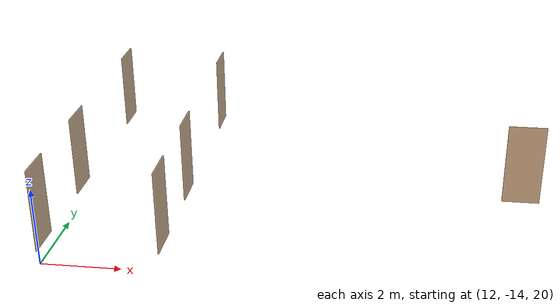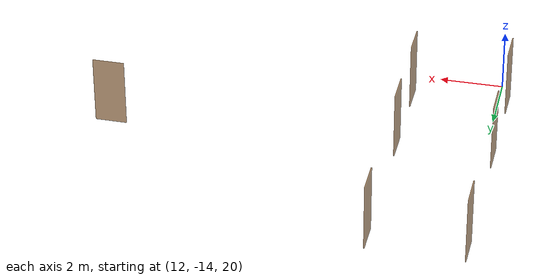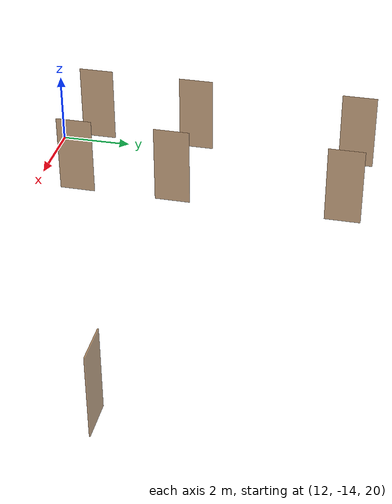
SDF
<sdf version="1.7">
 <world name="sim_world">
  <model name="room1_door">
   <pose>14.7 -5.25 20.0 0 0 -1.5707963267948966</pose>
   <plugin name="door" filename="libdoor.so">
    <v_max_door>0.5</v_max_door>
    <a_max_door>0.3</a_max_door>
    <a_nom_door>0.15</a_nom_door>
    <dx_min_door>0.01</dx_min_door>
    <f_max_door>500.0</f_max_door>
    <door name="room1_door" type="SwingDoor" left_joint_name="left_joint" right_joint_name="empty_joint"/>
   </plugin>
   <link name="left">
    <pose>0 0 1.11 0 0 0</pose>
    <visual name="left_visual">
     <geometry><box><size>0.99 0.03 2.2</size></box></geometry>
     <material>
      <ambient>0.5 0.25 0 0.6</ambient>
      <diffuse>0.5 0.25 0 0.6</diffuse>
      <pbr><metal><metalness>0.0</metalness></metal></pbr>
     </material>
    </visual>
    <collision name="left_collision">
     <geometry><box><size>0.99 0.03 2.2</size></box></geometry>
     <surface><contact><collide_bitmask>0x02</collide_bitmask></contact></surface>
    </collision>
    <inertial>
     <mass>50.0</mass>
     <inertia><ixx>20.17041666666667</ixx><iyy>24.250416666666673</iyy><izz>4.0875</izz></inertia>
    </inertial>
   </link>
   <joint name="left_joint" type="revolute">
    <parent>world</parent>
    <child>left</child>
    <axis><xyz>0 0 1</xyz><limit><lower>-1.57</lower><upper>0</upper></limit></axis>
    <pose>0.5 0 0 0 0 0</pose>
   </joint>
  </model>
  <model name="room2_door">
   <pose>11.7 -5.25 20.0 0 0 -1.5707963267948966</pose>
   <plugin name="door" filename="libdoor.so">
    <v_max_door>0.5</v_max_door>
    <a_max_door>0.3</a_max_door>
    <a_nom_door>0.15</a_nom_door>
    <dx_min_door>0.01</dx_min_door>
    <f_max_door>500.0</f_max_door>
    <door name="room2_door" type="SwingDoor" left_joint_name="empty_joint" right_joint_name="right_joint"/>
   </plugin>
   <link name="right">
    <pose>0 0 1.11 0 0 0</pose>
    <visual name="right_visual">
     <geometry><box><size>0.99 0.03 2.2</size></box></geometry>
     <material>
      <ambient>0.5 0.25 0 0.6</ambient>
      <diffuse>0.5 0.25 0 0.6</diffuse>
      <pbr><metal><metalness>0.0</metalness></metal></pbr>
     </material>
    </visual>
    <collision name="right_collision">
     <geometry><box><size>0.99 0.03 2.2</size></box></geometry>
     <surface><contact><collide_bitmask>0x02</collide_bitmask></contact></surface>
    </collision>
    <inertial>
     <mass>50.0</mass>
     <inertia><ixx>20.17041666666667</ixx><iyy>24.250416666666673</iyy><izz>4.0875</izz></inertia>
    </inertial>
   </link>
   <joint name="right_joint" type="revolute">
    <parent>world</parent>
    <child>right</child>
    <axis><xyz>0 0 1</xyz><limit><lower>0</lower><upper>1.57</upper></limit></axis>
    <pose>0.5 0 0 0 0 0</pose>
   </joint>
  </model>
  <model name="room3_door">
   <pose>11.7 -10.0 20.0 0 0 -1.5707963267948966</pose>
   <plugin name="door" filename="libdoor.so">
    <v_max_door>0.5</v_max_door>
    <a_max_door>0.3</a_max_door>
    <a_nom_door>0.15</a_nom_door>
    <dx_min_door>0.01</dx_min_door>
    <f_max_door>500.0</f_max_door>
    <door name="room3_door" type="SwingDoor" left_joint_name="empty_joint" right_joint_name="right_joint"/>
   </plugin>
   <link name="right">
    <pose>0 0 1.11 0 0 0</pose>
    <visual name="right_visual">
     <geometry><box><size>0.99 0.03 2.2</size></box></geometry>
     <material>
      <ambient>0.5 0.25 0 0.6</ambient>
      <diffuse>0.5 0.25 0 0.6</diffuse>
      <pbr><metal><metalness>0.0</metalness></metal></pbr>
     </material>
    </visual>
    <collision name="right_collision">
     <geometry><box><size>0.99 0.03 2.2</size></box></geometry>
     <surface><contact><collide_bitmask>0x02</collide_bitmask></contact></surface>
    </collision>
    <inertial>
     <mass>50.0</mass>
     <inertia><ixx>20.17041666666667</ixx><iyy>24.250416666666673</iyy><izz>4.0875</izz></inertia>
    </inertial>
   </link>
   <joint name="right_joint" type="revolute">
    <parent>world</parent>
    <child>right</child>
    <axis><xyz>0 0 1</xyz><limit><lower>0</lower><upper>1.57</upper></limit></axis>
    <pose>0.5 0 0 0 0 0</pose>
   </joint>
  </model>
  <model name="room4_door">
   <pose>11.7 -13.0 20.0 0 0 1.5707963267948966</pose>
   <plugin name="door" filename="libdoor.so">
    <v_max_door>0.5</v_max_door>
    <a_max_door>0.3</a_max_door>
    <a_nom_door>0.15</a_nom_door>
    <dx_min_door>0.01</dx_min_door>
    <f_max_door>500.0</f_max_door>
    <door name="room4_door" type="SwingDoor" left_joint_name="left_joint" right_joint_name="empty_joint"/>
   </plugin>
   <link name="left">
    <pose>0 0 1.11 0 0 0</pose>
    <visual name="left_visual">
     <geometry><box><size>0.99 0.03 2.2</size></box></geometry>
     <material>
      <ambient>0.5 0.25 0 0.6</ambient>
      <diffuse>0.5 0.25 0 0.6</diffuse>
      <pbr><metal><metalness>0.0</metalness></metal></pbr>
     </material>
    </visual>
    <collision name="left_collision">
     <geometry><box><size>0.99 0.03 2.2</size></box></geometry>
     <surface><contact><collide_bitmask>0x02</collide_bitmask></contact></surface>
    </collision>
    <inertial>
     <mass>50.0</mass>
     <inertia><ixx>20.17041666666667</ixx><iyy>24.250416666666673</iyy><izz>4.0875</izz></inertia>
    </inertial>
   </link>
   <joint name="left_joint" type="revolute">
    <parent>world</parent>
    <child>left</child>
    <axis><xyz>0 0 1</xyz><limit><lower>-1.57</lower><upper>0</upper></limit></axis>
    <pose>0.5 0 0 0 0 0</pose>
   </joint>
  </model>
  <model name="stair1_door">
   <pose>14.7 -10.0 20.0 0 0 1.5707963267948966</pose>
   <plugin name="door" filename="libdoor.so">
    <v_max_door>0.5</v_max_door>
    <a_max_door>0.3</a_max_door>
    <a_nom_door>0.15</a_nom_door>
    <dx_min_door>0.01</dx_min_door>
    <f_max_door>500.0</f_max_door>
    <door name="stair1_door" type="SwingDoor" left_joint_name="empty_joint" right_joint_name="right_joint"/>
   </plugin>
   <link name="right">
    <pose>0 0 1.11 0 0 0</pose>
    <visual name="right_visual">
     <geometry><box><size>0.99 0.03 2.2</size></box></geometry>
     <material>
      <ambient>0.5 0.25 0 0.6</ambient>
      <diffuse>0.5 0.25 0 0.6</diffuse>
      <pbr><metal><metalness>0.0</metalness></metal></pbr>
     </material>
    </visual>
    <collision name="right_collision">
     <geometry><box><size>0.99 0.03 2.2</size></box></geometry>
     <surface><contact><collide_bitmask>0x02</collide_bitmask></contact></surface>
    </collision>
    <inertial>
     <mass>50.0</mass>
     <inertia><ixx>20.17041666666667</ixx><iyy>24.250416666666673</iyy><izz>4.0875</izz></inertia>
    </inertial>
   </link>
   <joint name="right_joint" type="revolute">
    <parent>world</parent>
    <child>right</child>
    <axis><xyz>0 0 1</xyz><limit><lower>0</lower><upper>1.57</upper></limit></axis>
    <pose>0.5 0 0 0 0 0</pose>
   </joint>
  </model>
  <model name="room12_door">
   <pose>23.7 -9.5 20.0 0 0 3.141592653589793</pose>
   <plugin name="door" filename="libdoor.so">
    <v_max_door>0.5</v_max_door>
    <a_max_door>0.3</a_max_door>
    <a_nom_door>0.15</a_nom_door>
    <dx_min_door>0.01</dx_min_door>
    <f_max_door>500.0</f_max_door>
    <door name="room12_door" type="SwingDoor" left_joint_name="left_joint" right_joint_name="empty_joint"/>
   </plugin>
   <link name="left">
    <pose>0 0 1.11 0 0 0</pose>
    <visual name="left_visual">
     <geometry><box><size>0.99 0.03 2.2</size></box></geometry>
     <material>
      <ambient>0.5 0.25 0 0.6</ambient>
      <diffuse>0.5 0.25 0 0.6</diffuse>
      <pbr><metal><metalness>0.0</metalness></metal></pbr>
     </material>
    </visual>
    <collision name="left_collision">
     <geometry><box><size>0.99 0.03 2.2</size></box></geometry>
     <surface><contact><collide_bitmask>0x02</collide_bitmask></contact></surface>
    </collision>
    <inertial>
     <mass>50.0</mass>
     <inertia><ixx>20.17041666666667</ixx><iyy>24.250416666666673</iyy><izz>4.0875</izz></inertia>
    </inertial>
   </link>
   <joint name="left_joint" type="revolute">
    <parent>world</parent>
    <child>left</child>
    <axis><xyz>0 0 1</xyz><limit><lower>-1.57</lower><upper>0</upper></limit></axis>
    <pose>0.5 0 0 0 0 0</pose>
   </joint>
  </model>
  <model name="closet1_door">
   <pose>14.7 -12.75 20.0 0 0 -1.5707963267948966</pose>
   <plugin name="door" filename="libdoor.so">
    <v_max_door>0.5</v_max_door>
    <a_max_door>0.3</a_max_door>
    <a_nom_door>0.15</a_nom_door>
    <dx_min_door>0.01</dx_min_door>
    <f_max_door>500.0</f_max_door>
    <door name="closet1_door" type="SwingDoor" left_joint_name="empty_joint" right_joint_name="right_joint"/>
   </plugin>
   <link name="right">
    <pose>0 0 1.11 0 0 0</pose>
    <visual name="right_visual">
     <geometry><box><size>0.99 0.03 2.2</size></box></geometry>
     <material>
      <ambient>0.5 0.25 0 0.6</ambient>
      <diffuse>0.5 0.25 0 0.6</diffuse>
      <pbr><metal><metalness>0.0</metalness></metal></pbr>
     </material>
    </visual>
    <collision name="right_collision">
     <geometry><box><size>0.99 0.03 2.2</size></box></geometry>
     <surface><contact><collide_bitmask>0x02</collide_bitmask></contact></surface>
    </collision>
    <inertial>
     <mass>50.0</mass>
     <inertia><ixx>20.17041666666667</ixx><iyy>24.250416666666673</iyy><izz>4.0875</izz></inertia>
    </inertial>
   </link>
   <joint name="right_joint" type="revolute">
    <parent>world</parent>
    <child>right</child>
    <axis><xyz>0 0 1</xyz><limit><lower>0</lower><upper>1.57</upper></limit></axis>
    <pose>0.5 0 0 0 0 0</pose>
   </joint>
  </model>
 </world>
</sdf>
